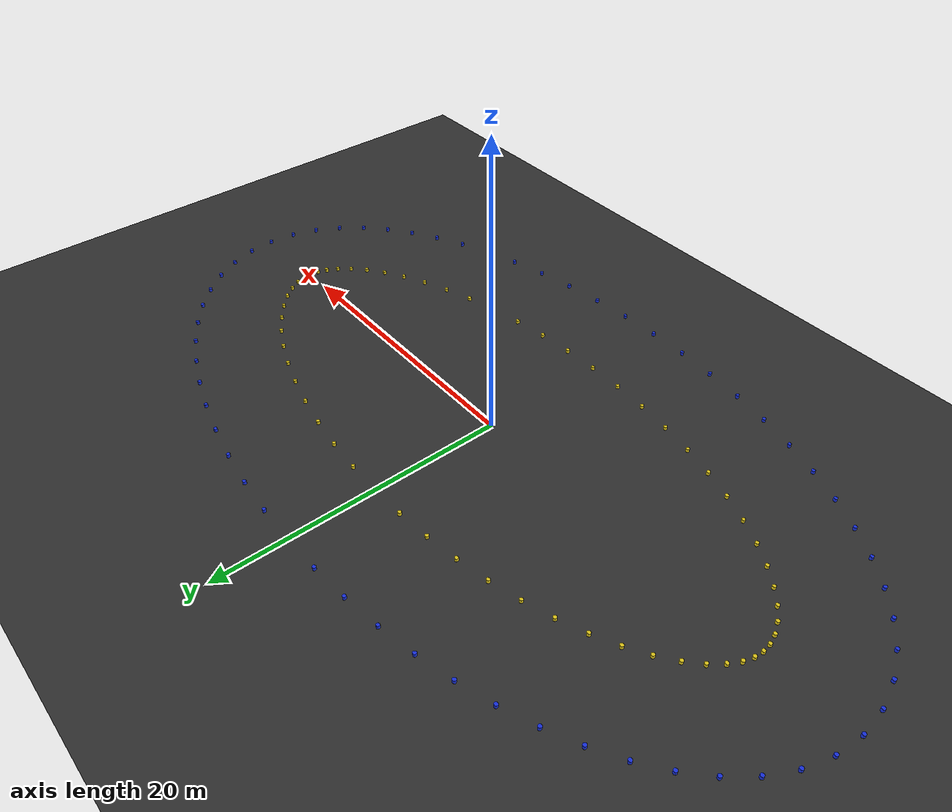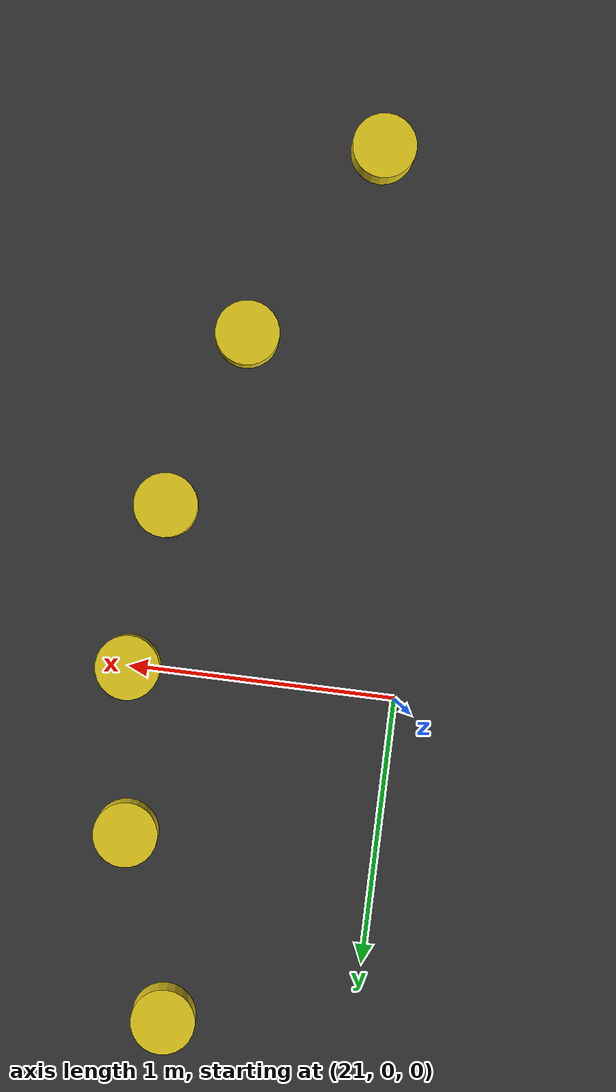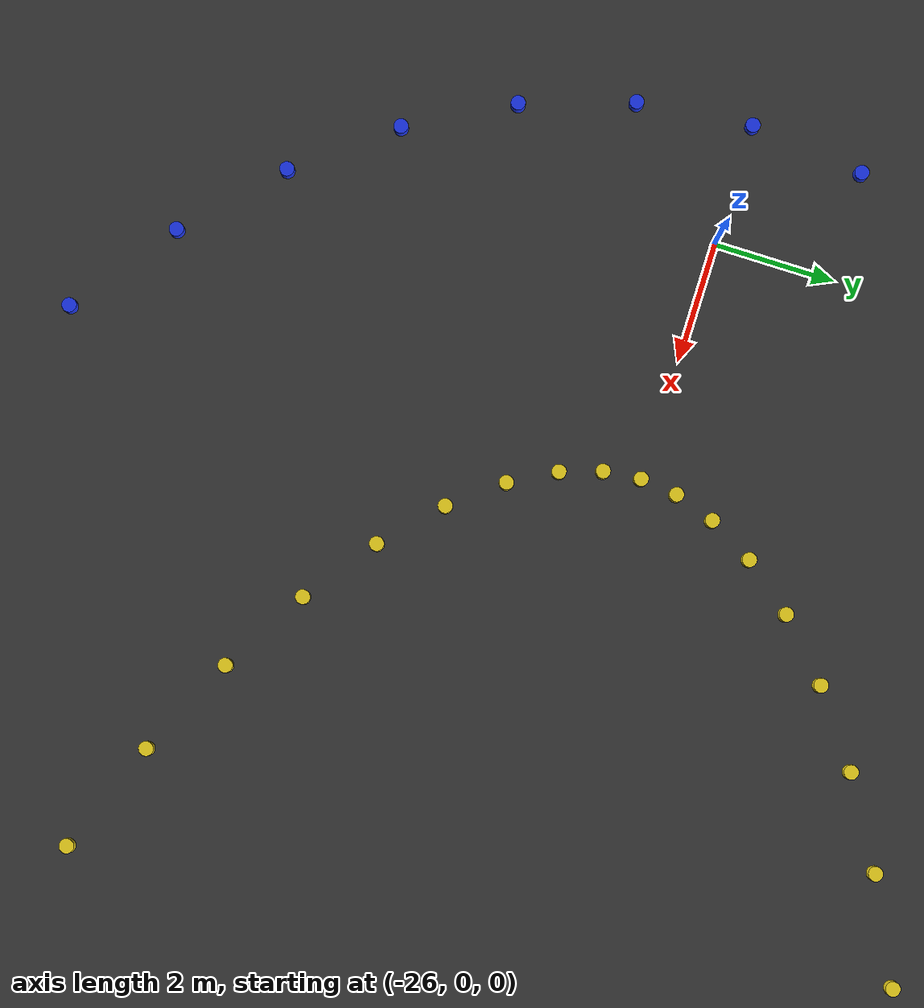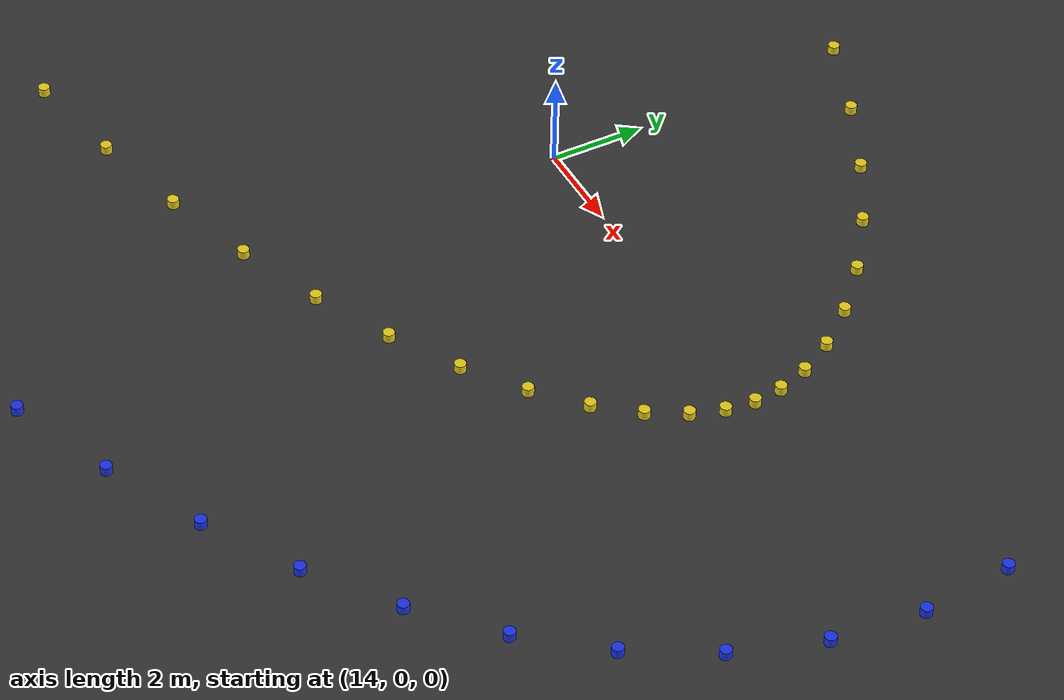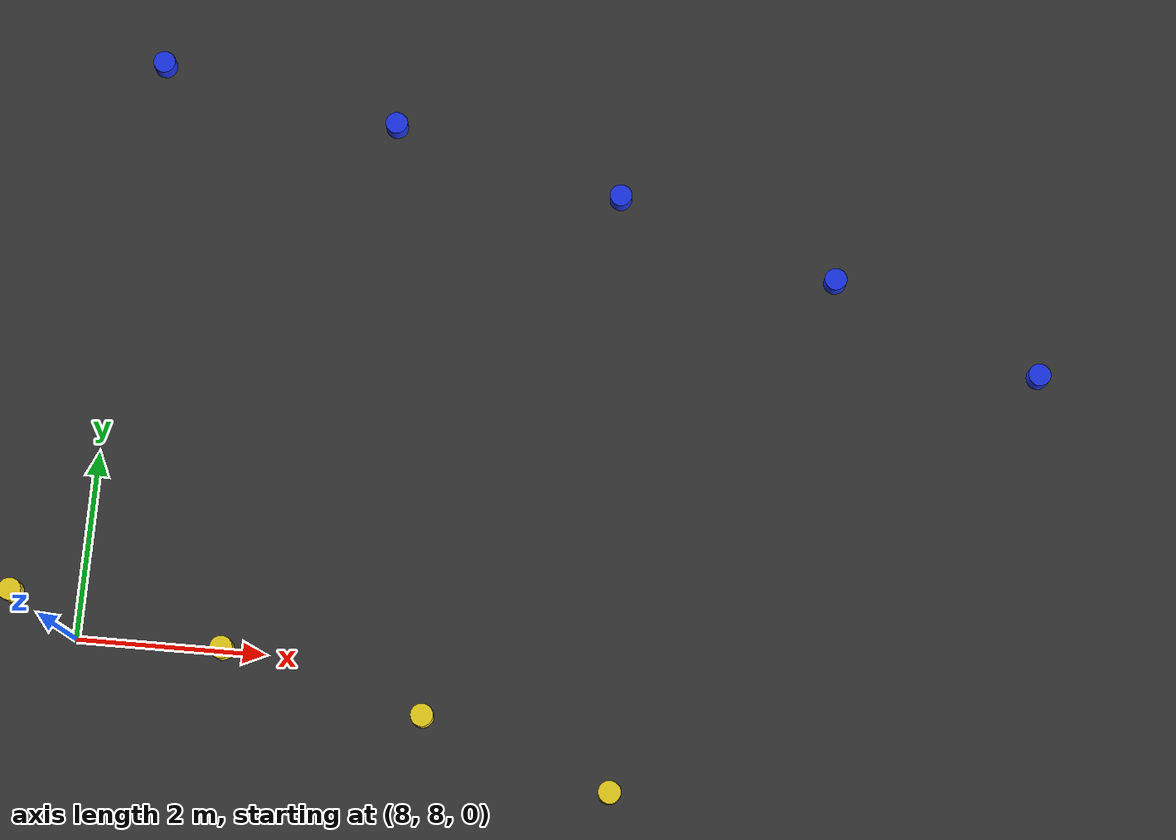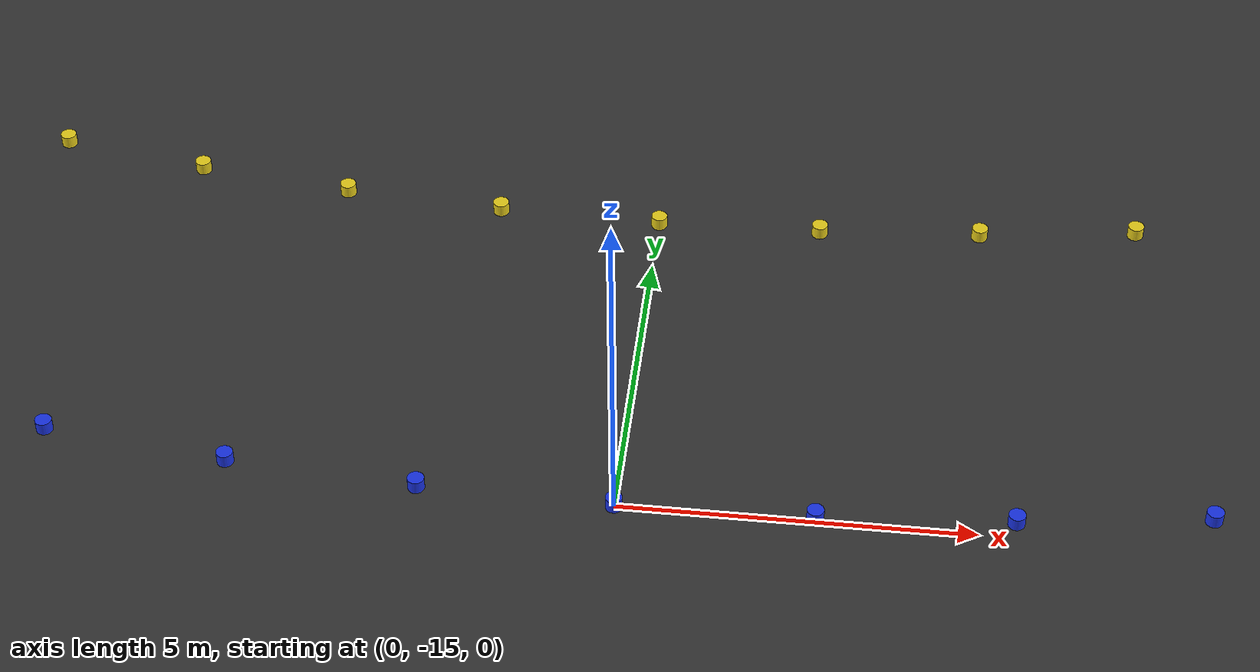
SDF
<sdf version="1.9">
 <world name="fs_world">
  <light name="sun" type="directional"/>
  <model name="ground">
   <static>true</static>
   <link name="link">
    <collision name="col">
     <geometry><plane><normal>0 0 1</normal><size>500 500</size></plane></geometry>
    </collision>
    <visual name="vis">
     <geometry><plane><normal>0 0 1</normal><size>500 500</size></plane></geometry>
     <material><ambient>0.2 0.2 0.2 1</ambient></material>
    </visual>
   </link>
  </model>
  <model name="cone_0">
   <pose>28.0 0.0 0 0 0 0</pose>
   <static>true</static>
   <link name="link">
    <collision name="col">
     <geometry><cylinder><radius>0.12</radius><length>0.35</length></cylinder></geometry>
    </collision>
    <visual name="vis">
     <geometry><cylinder><radius>0.12</radius><length>0.35</length></cylinder></geometry>
     <material><ambient>0.1 0.2 0.9 1</ambient></material>
    </visual>
   </link>
  </model>
  <model name="cone_1">
   <pose>22.0 0.0 0 0 0 0</pose>
   <static>true</static>
   <link name="link">
    <collision name="col">
     <geometry><cylinder><radius>0.12</radius><length>0.35</length></cylinder></geometry>
    </collision>
    <visual name="vis">
     <geometry><cylinder><radius>0.12</radius><length>0.35</length></cylinder></geometry>
     <material><ambient>0.9 0.8 0.1 1</ambient></material>
    </visual>
   </link>
  </model>
  <model name="cone_2">
   <pose>27.793614519841004 1.8960395127234113 0 0 0 0</pose>
   <static>true</static>
   <link name="link">
    <collision name="col">
     <geometry><cylinder><radius>0.12</radius><length>0.35</length></cylinder></geometry>
    </collision>
    <visual name="vis">
     <geometry><cylinder><radius>0.12</radius><length>0.35</length></cylinder></geometry>
     <material><ambient>0.1 0.2 0.9 1</ambient></material>
    </visual>
   </link>
  </model>
  <model name="cone_3">
   <pose>21.932480248572663 0.612643605700272 0 0 0 0</pose>
   <static>true</static>
   <link name="link">
    <collision name="col">
     <geometry><cylinder><radius>0.12</radius><length>0.35</length></cylinder></geometry>
    </collision>
    <visual name="vis">
     <geometry><cylinder><radius>0.12</radius><length>0.35</length></cylinder></geometry>
     <material><ambient>0.9 0.8 0.1 1</ambient></material>
    </visual>
   </link>
  </model>
  <model name="cone_4">
   <pose>27.196769642521225 3.7096477341922056 0 0 0 0</pose>
   <static>true</static>
   <link name="link">
    <collision name="col">
     <geometry><cylinder><radius>0.12</radius><length>0.35</length></cylinder></geometry>
    </collision>
    <visual name="vis">
     <geometry><cylinder><radius>0.12</radius><length>0.35</length></cylinder></geometry>
     <material><ambient>0.1 0.2 0.9 1</ambient></material>
    </visual>
   </link>
  </model>
  <model name="cone_5">
   <pose>21.71061039416906 1.2802328454340182 0 0 0 0</pose>
   <static>true</static>
   <link name="link">
    <collision name="col">
     <geometry><cylinder><radius>0.12</radius><length>0.35</length></cylinder></geometry>
    </collision>
    <visual name="vis">
     <geometry><cylinder><radius>0.12</radius><length>0.35</length></cylinder></geometry>
     <material><ambient>0.9 0.8 0.1 1</ambient></material>
    </visual>
   </link>
  </model>
  <model name="cone_6">
   <pose>26.2607494462514 5.389891169063499 0 0 0 0</pose>
   <static>true</static>
   <link name="link">
    <collision name="col">
     <geometry><cylinder><radius>0.12</radius><length>0.35</length></cylinder></geometry>
    </collision>
    <visual name="vis">
     <geometry><cylinder><radius>0.12</radius><length>0.35</length></cylinder></geometry>
     <material><ambient>0.1 0.2 0.9 1</ambient></material>
    </visual>
   </link>
  </model>
  <model name="cone_7">
   <pose>21.292076368506276 2.0265166959352383 0 0 0 0</pose>
   <static>true</static>
   <link name="link">
    <collision name="col">
     <geometry><cylinder><radius>0.12</radius><length>0.35</length></cylinder></geometry>
    </collision>
    <visual name="vis">
     <geometry><cylinder><radius>0.12</radius><length>0.35</length></cylinder></geometry>
     <material><ambient>0.9 0.8 0.1 1</ambient></material>
    </visual>
   </link>
  </model>
  <model name="cone_8">
   <pose>25.03812611919229 6.9209978372060625 0 0 0 0</pose>
   <static>true</static>
   <link name="link">
    <collision name="col">
     <geometry><cylinder><radius>0.12</radius><length>0.35</length></cylinder></geometry>
    </collision>
    <visual name="vis">
     <geometry><cylinder><radius>0.12</radius><length>0.35</length></cylinder></geometry>
     <material><ambient>0.1 0.2 0.9 1</ambient></material>
    </visual>
   </link>
  </model>
  <model name="cone_9">
   <pose>20.63914676293775 2.8406815966131425 0 0 0 0</pose>
   <static>true</static>
   <link name="link">
    <collision name="col">
     <geometry><cylinder><radius>0.12</radius><length>0.35</length></cylinder></geometry>
    </collision>
    <visual name="vis">
     <geometry><cylinder><radius>0.12</radius><length>0.35</length></cylinder></geometry>
     <material><ambient>0.9 0.8 0.1 1</ambient></material>
    </visual>
   </link>
  </model>
  <model name="cone_10">
   <pose>23.568533660782546 8.306873444703243 0 0 0 0</pose>
   <static>true</static>
   <link name="link">
    <collision name="col">
     <geometry><cylinder><radius>0.12</radius><length>0.35</length></cylinder></geometry>
    </collision>
    <visual name="vis">
     <geometry><cylinder><radius>0.12</radius><length>0.35</length></cylinder></geometry>
     <material><ambient>0.1 0.2 0.9 1</ambient></material>
    </visual>
   </link>
  </model>
  <model name="cone_11">
   <pose>19.732736528439393 3.693126555296755 0 0 0 0</pose>
   <static>true</static>
   <link name="link">
    <collision name="col">
     <geometry><cylinder><radius>0.12</radius><length>0.35</length></cylinder></geometry>
    </collision>
    <visual name="vis">
     <geometry><cylinder><radius>0.12</radius><length>0.35</length></cylinder></geometry>
     <material><ambient>0.9 0.8 0.1 1</ambient></material>
    </visual>
   </link>
  </model>
  <model name="cone_12">
   <pose>21.87910785404863 9.556487659740117 0 0 0 0</pose>
   <static>true</static>
   <link name="link">
    <collision name="col">
     <geometry><cylinder><radius>0.12</radius><length>0.35</length></cylinder></geometry>
    </collision>
    <visual name="vis">
     <geometry><cylinder><radius>0.12</radius><length>0.35</length></cylinder></geometry>
     <material><ambient>0.1 0.2 0.9 1</ambient></material>
    </visual>
   </link>
  </model>
  <model name="cone_13">
   <pose>18.57174186469874 4.550358395279239 0 0 0 0</pose>
   <static>true</static>
   <link name="link">
    <collision name="col">
     <geometry><cylinder><radius>0.12</radius><length>0.35</length></cylinder></geometry>
    </collision>
    <visual name="vis">
     <geometry><cylinder><radius>0.12</radius><length>0.35</length></cylinder></geometry>
     <material><ambient>0.9 0.8 0.1 1</ambient></material>
    </visual>
   </link>
  </model>
  <model name="cone_14">
   <pose>19.989892051724603 10.676889129386758 0 0 0 0</pose>
   <static>true</static>
   <link name="link">
    <collision name="col">
     <geometry><cylinder><radius>0.12</radius><length>0.35</length></cylinder></geometry>
    </collision>
    <visual name="vis">
     <geometry><cylinder><radius>0.12</radius><length>0.35</length></cylinder></geometry>
     <material><ambient>0.1 0.2 0.9 1</ambient></material>
    </visual>
   </link>
  </model>
  <model name="cone_15">
   <pose>17.167349222145113 5.38224542322584 0 0 0 0</pose>
   <static>true</static>
   <link name="link">
    <collision name="col">
     <geometry><cylinder><radius>0.12</radius><length>0.35</length></cylinder></geometry>
    </collision>
    <visual name="vis">
     <geometry><cylinder><radius>0.12</radius><length>0.35</length></cylinder></geometry>
     <material><ambient>0.9 0.8 0.1 1</ambient></material>
    </visual>
   </link>
  </model>
  <model name="cone_16">
   <pose>17.918445292419193 11.671548220537348 0 0 0 0</pose>
   <static>true</static>
   <link name="link">
    <collision name="col">
     <geometry><cylinder><radius>0.12</radius><length>0.35</length></cylinder></geometry>
    </collision>
    <visual name="vis">
     <geometry><cylinder><radius>0.12</radius><length>0.35</length></cylinder></geometry>
     <material><ambient>0.1 0.2 0.9 1</ambient></material>
    </visual>
   </link>
  </model>
  <model name="cone_17">
   <pose>15.53808502552372 6.163927590920116 0 0 0 0</pose>
   <static>true</static>
   <link name="link">
    <collision name="col">
     <geometry><cylinder><radius>0.12</radius><length>0.35</length></cylinder></geometry>
    </collision>
    <visual name="vis">
     <geometry><cylinder><radius>0.12</radius><length>0.35</length></cylinder></geometry>
     <material><ambient>0.9 0.8 0.1 1</ambient></material>
    </visual>
   </link>
  </model>
  <model name="cone_18">
   <pose>15.68250332635542 12.54088973823052 0 0 0 0</pose>
   <static>true</static>
   <link name="link">
    <collision name="col">
     <geometry><cylinder><radius>0.12</radius><length>0.35</length></cylinder></geometry>
    </collision>
    <visual name="vis">
     <geometry><cylinder><radius>0.12</radius><length>0.35</length></cylinder></geometry>
     <material><ambient>0.1 0.2 0.9 1</ambient></material>
    </visual>
   </link>
  </model>
  <model name="cone_19">
   <pose>13.706759288268238 6.875518126768219 0 0 0 0</pose>
   <static>true</static>
   <link name="link">
    <collision name="col">
     <geometry><cylinder><radius>0.12</radius><length>0.35</length></cylinder></geometry>
    </collision>
    <visual name="vis">
     <geometry><cylinder><radius>0.12</radius><length>0.35</length></cylinder></geometry>
     <material><ambient>0.9 0.8 0.1 1</ambient></material>
    </visual>
   </link>
  </model>
  <model name="cone_20">
   <pose>13.301187825450024 13.283342387257138 0 0 0 0</pose>
   <static>true</static>
   <link name="link">
    <collision name="col">
     <geometry><cylinder><radius>0.12</radius><length>0.35</length></cylinder></geometry>
    </collision>
    <visual name="vis">
     <geometry><cylinder><radius>0.12</radius><length>0.35</length></cylinder></geometry>
     <material><ambient>0.1 0.2 0.9 1</ambient></material>
    </visual>
   </link>
  </model>
  <model name="cone_21">
   <pose>11.698812174549984 7.50126730356939 0 0 0 0</pose>
   <static>true</static>
   <link name="link">
    <collision name="col">
     <geometry><cylinder><radius>0.12</radius><length>0.35</length></cylinder></geometry>
    </collision>
    <visual name="vis">
     <geometry><cylinder><radius>0.12</radius><length>0.35</length></cylinder></geometry>
     <material><ambient>0.9 0.8 0.1 1</ambient></material>
    </visual>
   </link>
  </model>
  <model name="cone_22">
   <pose>10.795387747547151 13.896298467713052 0 0 0 0</pose>
   <static>true</static>
   <link name="link">
    <collision name="col">
     <geometry><cylinder><radius>0.12</radius><length>0.35</length></cylinder></geometry>
    </collision>
    <visual name="vis">
     <geometry><cylinder><radius>0.12</radius><length>0.35</length></cylinder></geometry>
     <material><ambient>0.1 0.2 0.9 1</ambient></material>
    </visual>
   </link>
  </model>
  <model name="cone_23">
   <pose>9.541444406242858 8.02879251570937 0 0 0 0</pose>
   <static>true</static>
   <link name="link">
    <collision name="col">
     <geometry><cylinder><radius>0.12</radius><length>0.35</length></cylinder></geometry>
    </collision>
    <visual name="vis">
     <geometry><cylinder><radius>0.12</radius><length>0.35</length></cylinder></geometry>
     <material><ambient>0.9 0.8 0.1 1</ambient></material>
    </visual>
   </link>
  </model>
  <model name="cone_24">
   <pose>8.187720567666641 14.376844634541838 0 0 0 0</pose>
   <static>true</static>
   <link name="link">
    <collision name="col">
     <geometry><cylinder><radius>0.12</radius><length>0.35</length></cylinder></geometry>
    </collision>
    <visual name="vis">
     <geometry><cylinder><radius>0.12</radius><length>0.35</length></cylinder></geometry>
     <material><ambient>0.1 0.2 0.9 1</ambient></material>
    </visual>
   </link>
  </model>
  <model name="cone_25">
   <pose>7.263129151080732 8.448511756541846 0 0 0 0</pose>
   <static>true</static>
   <link name="link">
    <collision name="col">
     <geometry><cylinder><radius>0.12</radius><length>0.35</length></cylinder></geometry>
    </collision>
    <visual name="vis">
     <geometry><cylinder><radius>0.12</radius><length>0.35</length></cylinder></geometry>
     <material><ambient>0.9 0.8 0.1 1</ambient></material>
    </visual>
   </link>
  </model>
  <model name="cone_26">
   <pose>5.502292966352266 14.722277755320746 0 0 0 0</pose>
   <static>true</static>
   <link name="link">
    <collision name="col">
     <geometry><cylinder><radius>0.12</radius><length>0.35</length></cylinder></geometry>
    </collision>
    <visual name="vis">
     <geometry><cylinder><radius>0.12</radius><length>0.35</length></cylinder></geometry>
     <material><ambient>0.1 0.2 0.9 1</ambient></material>
    </visual>
   </link>
  </model>
  <model name="cone_27">
   <pose>4.893291574535706 8.753264662290587 0 0 0 0</pose>
   <static>true</static>
   <link name="link">
    <collision name="col">
     <geometry><cylinder><radius>0.12</radius><length>0.35</length></cylinder></geometry>
    </collision>
    <visual name="vis">
     <geometry><cylinder><radius>0.12</radius><length>0.35</length></cylinder></geometry>
     <material><ambient>0.9 0.8 0.1 1</ambient></material>
    </visual>
   </link>
  </model>
  <model name="cone_28">
   <pose>2.764369438790843 14.930452208094279 0 0 0 0</pose>
   <static>true</static>
   <link name="link">
    <collision name="col">
     <geometry><cylinder><radius>0.12</radius><length>0.35</length></cylinder></geometry>
    </collision>
    <visual name="vis">
     <geometry><cylinder><radius>0.12</radius><length>0.35</length></cylinder></geometry>
     <material><ambient>0.1 0.2 0.9 1</ambient></material>
    </visual>
   </link>
  </model>
  <model name="cone_29">
   <pose>2.46205372459183 8.938073280744279 0 0 0 0</pose>
   <static>true</static>
   <link name="link">
    <collision name="col">
     <geometry><cylinder><radius>0.12</radius><length>0.35</length></cylinder></geometry>
    </collision>
    <visual name="vis">
     <geometry><cylinder><radius>0.12</radius><length>0.35</length></cylinder></geometry>
     <material><ambient>0.9 0.8 0.1 1</ambient></material>
    </visual>
   </link>
  </model>
  <model name="cone_30">
   <pose>1.618983068472801e-15 15.0 0 0 0 0</pose>
   <static>true</static>
   <link name="link">
    <collision name="col">
     <geometry><cylinder><radius>0.12</radius><length>0.35</length></cylinder></geometry>
    </collision>
    <visual name="vis">
     <geometry><cylinder><radius>0.12</radius><length>0.35</length></cylinder></geometry>
     <material><ambient>0.1 0.2 0.9 1</ambient></material>
    </visual>
   </link>
  </model>
  <model name="cone_31">
   <pose>1.442633929395582e-15 9.0 0 0 0 0</pose>
   <static>true</static>
   <link name="link">
    <collision name="col">
     <geometry><cylinder><radius>0.12</radius><length>0.35</length></cylinder></geometry>
    </collision>
    <visual name="vis">
     <geometry><cylinder><radius>0.12</radius><length>0.35</length></cylinder></geometry>
     <material><ambient>0.9 0.8 0.1 1</ambient></material>
    </visual>
   </link>
  </model>
  <model name="cone_32">
   <pose>-2.7643694387908453 14.930452208094279 0 0 0 0</pose>
   <static>true</static>
   <link name="link">
    <collision name="col">
     <geometry><cylinder><radius>0.12</radius><length>0.35</length></cylinder></geometry>
    </collision>
    <visual name="vis">
     <geometry><cylinder><radius>0.12</radius><length>0.35</length></cylinder></geometry>
     <material><ambient>0.1 0.2 0.9 1</ambient></material>
    </visual>
   </link>
  </model>
  <model name="cone_33">
   <pose>-2.4620537245918324 8.938073280744279 0 0 0 0</pose>
   <static>true</static>
   <link name="link">
    <collision name="col">
     <geometry><cylinder><radius>0.12</radius><length>0.35</length></cylinder></geometry>
    </collision>
    <visual name="vis">
     <geometry><cylinder><radius>0.12</radius><length>0.35</length></cylinder></geometry>
     <material><ambient>0.9 0.8 0.1 1</ambient></material>
    </visual>
   </link>
  </model>
  <model name="cone_34">
   <pose>-5.502292966352264 14.72227775532075 0 0 0 0</pose>
   <static>true</static>
   <link name="link">
    <collision name="col">
     <geometry><cylinder><radius>0.12</radius><length>0.35</length></cylinder></geometry>
    </collision>
    <visual name="vis">
     <geometry><cylinder><radius>0.12</radius><length>0.35</length></cylinder></geometry>
     <material><ambient>0.1 0.2 0.9 1</ambient></material>
    </visual>
   </link>
  </model>
  <model name="cone_35">
   <pose>-4.893291574535703 8.753264662290587 0 0 0 0</pose>
   <static>true</static>
   <link name="link">
    <collision name="col">
     <geometry><cylinder><radius>0.12</radius><length>0.35</length></cylinder></geometry>
    </collision>
    <visual name="vis">
     <geometry><cylinder><radius>0.12</radius><length>0.35</length></cylinder></geometry>
     <material><ambient>0.9 0.8 0.1 1</ambient></material>
    </visual>
   </link>
  </model>
  <model name="cone_36">
   <pose>-8.187720567666638 14.37684463454184 0 0 0 0</pose>
   <static>true</static>
   <link name="link">
    <collision name="col">
     <geometry><cylinder><radius>0.12</radius><length>0.35</length></cylinder></geometry>
    </collision>
    <visual name="vis">
     <geometry><cylinder><radius>0.12</radius><length>0.35</length></cylinder></geometry>
     <material><ambient>0.1 0.2 0.9 1</ambient></material>
    </visual>
   </link>
  </model>
  <model name="cone_37">
   <pose>-7.263129151080729 8.448511756541848 0 0 0 0</pose>
   <static>true</static>
   <link name="link">
    <collision name="col">
     <geometry><cylinder><radius>0.12</radius><length>0.35</length></cylinder></geometry>
    </collision>
    <visual name="vis">
     <geometry><cylinder><radius>0.12</radius><length>0.35</length></cylinder></geometry>
     <material><ambient>0.9 0.8 0.1 1</ambient></material>
    </visual>
   </link>
  </model>
  <model name="cone_38">
   <pose>-10.795387747547153 13.896298467713052 0 0 0 0</pose>
   <static>true</static>
   <link name="link">
    <collision name="col">
     <geometry><cylinder><radius>0.12</radius><length>0.35</length></cylinder></geometry>
    </collision>
    <visual name="vis">
     <geometry><cylinder><radius>0.12</radius><length>0.35</length></cylinder></geometry>
     <material><ambient>0.1 0.2 0.9 1</ambient></material>
    </visual>
   </link>
  </model>
  <model name="cone_39">
   <pose>-9.54144440624286 8.02879251570937 0 0 0 0</pose>
   <static>true</static>
   <link name="link">
    <collision name="col">
     <geometry><cylinder><radius>0.12</radius><length>0.35</length></cylinder></geometry>
    </collision>
    <visual name="vis">
     <geometry><cylinder><radius>0.12</radius><length>0.35</length></cylinder></geometry>
     <material><ambient>0.9 0.8 0.1 1</ambient></material>
    </visual>
   </link>
  </model>
  <model name="cone_40">
   <pose>-13.301187825450015 13.283342387257138 0 0 0 0</pose>
   <static>true</static>
   <link name="link">
    <collision name="col">
     <geometry><cylinder><radius>0.12</radius><length>0.35</length></cylinder></geometry>
    </collision>
    <visual name="vis">
     <geometry><cylinder><radius>0.12</radius><length>0.35</length></cylinder></geometry>
     <material><ambient>0.1 0.2 0.9 1</ambient></material>
    </visual>
   </link>
  </model>
  <model name="cone_41">
   <pose>-11.698812174549975 7.50126730356939 0 0 0 0</pose>
   <static>true</static>
   <link name="link">
    <collision name="col">
     <geometry><cylinder><radius>0.12</radius><length>0.35</length></cylinder></geometry>
    </collision>
    <visual name="vis">
     <geometry><cylinder><radius>0.12</radius><length>0.35</length></cylinder></geometry>
     <material><ambient>0.9 0.8 0.1 1</ambient></material>
    </visual>
   </link>
  </model>
  <model name="cone_42">
   <pose>-15.682503326355416 12.54088973823052 0 0 0 0</pose>
   <static>true</static>
   <link name="link">
    <collision name="col">
     <geometry><cylinder><radius>0.12</radius><length>0.35</length></cylinder></geometry>
    </collision>
    <visual name="vis">
     <geometry><cylinder><radius>0.12</radius><length>0.35</length></cylinder></geometry>
     <material><ambient>0.1 0.2 0.9 1</ambient></material>
    </visual>
   </link>
  </model>
  <model name="cone_43">
   <pose>-13.706759288268234 6.875518126768219 0 0 0 0</pose>
   <static>true</static>
   <link name="link">
    <collision name="col">
     <geometry><cylinder><radius>0.12</radius><length>0.35</length></cylinder></geometry>
    </collision>
    <visual name="vis">
     <geometry><cylinder><radius>0.12</radius><length>0.35</length></cylinder></geometry>
     <material><ambient>0.9 0.8 0.1 1</ambient></material>
    </visual>
   </link>
  </model>
  <model name="cone_44">
   <pose>-17.918445292419193 11.671548220537348 0 0 0 0</pose>
   <static>true</static>
   <link name="link">
    <collision name="col">
     <geometry><cylinder><radius>0.12</radius><length>0.35</length></cylinder></geometry>
    </collision>
    <visual name="vis">
     <geometry><cylinder><radius>0.12</radius><length>0.35</length></cylinder></geometry>
     <material><ambient>0.1 0.2 0.9 1</ambient></material>
    </visual>
   </link>
  </model>
  <model name="cone_45">
   <pose>-15.53808502552372 6.163927590920116 0 0 0 0</pose>
   <static>true</static>
   <link name="link">
    <collision name="col">
     <geometry><cylinder><radius>0.12</radius><length>0.35</length></cylinder></geometry>
    </collision>
    <visual name="vis">
     <geometry><cylinder><radius>0.12</radius><length>0.35</length></cylinder></geometry>
     <material><ambient>0.9 0.8 0.1 1</ambient></material>
    </visual>
   </link>
  </model>
  <model name="cone_46">
   <pose>-19.989892051724595 10.67688912938676 0 0 0 0</pose>
   <static>true</static>
   <link name="link">
    <collision name="col">
     <geometry><cylinder><radius>0.12</radius><length>0.35</length></cylinder></geometry>
    </collision>
    <visual name="vis">
     <geometry><cylinder><radius>0.12</radius><length>0.35</length></cylinder></geometry>
     <material><ambient>0.1 0.2 0.9 1</ambient></material>
    </visual>
   </link>
  </model>
  <model name="cone_47">
   <pose>-17.167349222145106 5.382245423225841 0 0 0 0</pose>
   <static>true</static>
   <link name="link">
    <collision name="col">
     <geometry><cylinder><radius>0.12</radius><length>0.35</length></cylinder></geometry>
    </collision>
    <visual name="vis">
     <geometry><cylinder><radius>0.12</radius><length>0.35</length></cylinder></geometry>
     <material><ambient>0.9 0.8 0.1 1</ambient></material>
    </visual>
   </link>
  </model>
  <model name="cone_48">
   <pose>-21.879107854048627 9.556487659740117 0 0 0 0</pose>
   <static>true</static>
   <link name="link">
    <collision name="col">
     <geometry><cylinder><radius>0.12</radius><length>0.35</length></cylinder></geometry>
    </collision>
    <visual name="vis">
     <geometry><cylinder><radius>0.12</radius><length>0.35</length></cylinder></geometry>
     <material><ambient>0.1 0.2 0.9 1</ambient></material>
    </visual>
   </link>
  </model>
  <model name="cone_49">
   <pose>-18.571741864698737 4.55035839527924 0 0 0 0</pose>
   <static>true</static>
   <link name="link">
    <collision name="col">
     <geometry><cylinder><radius>0.12</radius><length>0.35</length></cylinder></geometry>
    </collision>
    <visual name="vis">
     <geometry><cylinder><radius>0.12</radius><length>0.35</length></cylinder></geometry>
     <material><ambient>0.9 0.8 0.1 1</ambient></material>
    </visual>
   </link>
  </model>
  <model name="cone_50">
   <pose>-23.568533660782546 8.306873444703243 0 0 0 0</pose>
   <static>true</static>
   <link name="link">
    <collision name="col">
     <geometry><cylinder><radius>0.12</radius><length>0.35</length></cylinder></geometry>
    </collision>
    <visual name="vis">
     <geometry><cylinder><radius>0.12</radius><length>0.35</length></cylinder></geometry>
     <material><ambient>0.1 0.2 0.9 1</ambient></material>
    </visual>
   </link>
  </model>
  <model name="cone_51">
   <pose>-19.732736528439393 3.693126555296755 0 0 0 0</pose>
   <static>true</static>
   <link name="link">
    <collision name="col">
     <geometry><cylinder><radius>0.12</radius><length>0.35</length></cylinder></geometry>
    </collision>
    <visual name="vis">
     <geometry><cylinder><radius>0.12</radius><length>0.35</length></cylinder></geometry>
     <material><ambient>0.9 0.8 0.1 1</ambient></material>
    </visual>
   </link>
  </model>
  <model name="cone_52">
   <pose>-25.03812611919229 6.920997837206066 0 0 0 0</pose>
   <static>true</static>
   <link name="link">
    <collision name="col">
     <geometry><cylinder><radius>0.12</radius><length>0.35</length></cylinder></geometry>
    </collision>
    <visual name="vis">
     <geometry><cylinder><radius>0.12</radius><length>0.35</length></cylinder></geometry>
     <material><ambient>0.1 0.2 0.9 1</ambient></material>
    </visual>
   </link>
  </model>
  <model name="cone_53">
   <pose>-20.63914676293775 2.8406815966131442 0 0 0 0</pose>
   <static>true</static>
   <link name="link">
    <collision name="col">
     <geometry><cylinder><radius>0.12</radius><length>0.35</length></cylinder></geometry>
    </collision>
    <visual name="vis">
     <geometry><cylinder><radius>0.12</radius><length>0.35</length></cylinder></geometry>
     <material><ambient>0.9 0.8 0.1 1</ambient></material>
    </visual>
   </link>
  </model>
  <model name="cone_54">
   <pose>-26.2607494462514 5.389891169063501 0 0 0 0</pose>
   <static>true</static>
   <link name="link">
    <collision name="col">
     <geometry><cylinder><radius>0.12</radius><length>0.35</length></cylinder></geometry>
    </collision>
    <visual name="vis">
     <geometry><cylinder><radius>0.12</radius><length>0.35</length></cylinder></geometry>
     <material><ambient>0.1 0.2 0.9 1</ambient></material>
    </visual>
   </link>
  </model>
  <model name="cone_55">
   <pose>-21.292076368506276 2.0265166959352396 0 0 0 0</pose>
   <static>true</static>
   <link name="link">
    <collision name="col">
     <geometry><cylinder><radius>0.12</radius><length>0.35</length></cylinder></geometry>
    </collision>
    <visual name="vis">
     <geometry><cylinder><radius>0.12</radius><length>0.35</length></cylinder></geometry>
     <material><ambient>0.9 0.8 0.1 1</ambient></material>
    </visual>
   </link>
  </model>
  <model name="cone_56">
   <pose>-27.196769642521225 3.7096477341922056 0 0 0 0</pose>
   <static>true</static>
   <link name="link">
    <collision name="col">
     <geometry><cylinder><radius>0.12</radius><length>0.35</length></cylinder></geometry>
    </collision>
    <visual name="vis">
     <geometry><cylinder><radius>0.12</radius><length>0.35</length></cylinder></geometry>
     <material><ambient>0.1 0.2 0.9 1</ambient></material>
    </visual>
   </link>
  </model>
  <model name="cone_57">
   <pose>-21.71061039416906 1.2802328454340182 0 0 0 0</pose>
   <static>true</static>
   <link name="link">
    <collision name="col">
     <geometry><cylinder><radius>0.12</radius><length>0.35</length></cylinder></geometry>
    </collision>
    <visual name="vis">
     <geometry><cylinder><radius>0.12</radius><length>0.35</length></cylinder></geometry>
     <material><ambient>0.9 0.8 0.1 1</ambient></material>
    </visual>
   </link>
  </model>
  <model name="cone_58">
   <pose>-27.793614519841004 1.8960395127234158 0 0 0 0</pose>
   <static>true</static>
   <link name="link">
    <collision name="col">
     <geometry><cylinder><radius>0.12</radius><length>0.35</length></cylinder></geometry>
    </collision>
    <visual name="vis">
     <geometry><cylinder><radius>0.12</radius><length>0.35</length></cylinder></geometry>
     <material><ambient>0.1 0.2 0.9 1</ambient></material>
    </visual>
   </link>
  </model>
  <model name="cone_59">
   <pose>-21.932480248572663 0.6126436057002737 0 0 0 0</pose>
   <static>true</static>
   <link name="link">
    <collision name="col">
     <geometry><cylinder><radius>0.12</radius><length>0.35</length></cylinder></geometry>
    </collision>
    <visual name="vis">
     <geometry><cylinder><radius>0.12</radius><length>0.35</length></cylinder></geometry>
     <material><ambient>0.9 0.8 0.1 1</ambient></material>
    </visual>
   </link>
  </model>
  <model name="cone_60">
   <pose>-28.0 2.2349804084439196e-15 0 0 0 0</pose>
   <static>true</static>
   <link name="link">
    <collision name="col">
     <geometry><cylinder><radius>0.12</radius><length>0.35</length></cylinder></geometry>
    </collision>
    <visual name="vis">
     <geometry><cylinder><radius>0.12</radius><length>0.35</length></cylinder></geometry>
     <material><ambient>0.1 0.2 0.9 1</ambient></material>
    </visual>
   </link>
  </model>
  <model name="cone_61">
   <pose>-22.0 7.041719095097281e-16 0 0 0 0</pose>
   <static>true</static>
   <link name="link">
    <collision name="col">
     <geometry><cylinder><radius>0.12</radius><length>0.35</length></cylinder></geometry>
    </collision>
    <visual name="vis">
     <geometry><cylinder><radius>0.12</radius><length>0.35</length></cylinder></geometry>
     <material><ambient>0.9 0.8 0.1 1</ambient></material>
    </visual>
   </link>
  </model>
  <model name="cone_62">
   <pose>-27.793614519841004 -1.8960395127234115 0 0 0 0</pose>
   <static>true</static>
   <link name="link">
    <collision name="col">
     <geometry><cylinder><radius>0.12</radius><length>0.35</length></cylinder></geometry>
    </collision>
    <visual name="vis">
     <geometry><cylinder><radius>0.12</radius><length>0.35</length></cylinder></geometry>
     <material><ambient>0.1 0.2 0.9 1</ambient></material>
    </visual>
   </link>
  </model>
  <model name="cone_63">
   <pose>-21.932480248572663 -0.6126436057002722 0 0 0 0</pose>
   <static>true</static>
   <link name="link">
    <collision name="col">
     <geometry><cylinder><radius>0.12</radius><length>0.35</length></cylinder></geometry>
    </collision>
    <visual name="vis">
     <geometry><cylinder><radius>0.12</radius><length>0.35</length></cylinder></geometry>
     <material><ambient>0.9 0.8 0.1 1</ambient></material>
    </visual>
   </link>
  </model>
  <model name="cone_64">
   <pose>-27.19676964252122 -3.7096477341922087 0 0 0 0</pose>
   <static>true</static>
   <link name="link">
    <collision name="col">
     <geometry><cylinder><radius>0.12</radius><length>0.35</length></cylinder></geometry>
    </collision>
    <visual name="vis">
     <geometry><cylinder><radius>0.12</radius><length>0.35</length></cylinder></geometry>
     <material><ambient>0.1 0.2 0.9 1</ambient></material>
    </visual>
   </link>
  </model>
  <model name="cone_65">
   <pose>-21.710610394169056 -1.2802328454340195 0 0 0 0</pose>
   <static>true</static>
   <link name="link">
    <collision name="col">
     <geometry><cylinder><radius>0.12</radius><length>0.35</length></cylinder></geometry>
    </collision>
    <visual name="vis">
     <geometry><cylinder><radius>0.12</radius><length>0.35</length></cylinder></geometry>
     <material><ambient>0.9 0.8 0.1 1</ambient></material>
    </visual>
   </link>
  </model>
  <model name="cone_66">
   <pose>-26.260749446251403 -5.389891169063498 0 0 0 0</pose>
   <static>true</static>
   <link name="link">
    <collision name="col">
     <geometry><cylinder><radius>0.12</radius><length>0.35</length></cylinder></geometry>
    </collision>
    <visual name="vis">
     <geometry><cylinder><radius>0.12</radius><length>0.35</length></cylinder></geometry>
     <material><ambient>0.1 0.2 0.9 1</ambient></material>
    </visual>
   </link>
  </model>
  <model name="cone_67">
   <pose>-21.29207636850628 -2.026516695935238 0 0 0 0</pose>
   <static>true</static>
   <link name="link">
    <collision name="col">
     <geometry><cylinder><radius>0.12</radius><length>0.35</length></cylinder></geometry>
    </collision>
    <visual name="vis">
     <geometry><cylinder><radius>0.12</radius><length>0.35</length></cylinder></geometry>
     <material><ambient>0.9 0.8 0.1 1</ambient></material>
    </visual>
   </link>
  </model>
  <model name="cone_68">
   <pose>-25.03812611919229 -6.9209978372060625 0 0 0 0</pose>
   <static>true</static>
   <link name="link">
    <collision name="col">
     <geometry><cylinder><radius>0.12</radius><length>0.35</length></cylinder></geometry>
    </collision>
    <visual name="vis">
     <geometry><cylinder><radius>0.12</radius><length>0.35</length></cylinder></geometry>
     <material><ambient>0.1 0.2 0.9 1</ambient></material>
    </visual>
   </link>
  </model>
  <model name="cone_69">
   <pose>-20.63914676293775 -2.8406815966131425 0 0 0 0</pose>
   <static>true</static>
   <link name="link">
    <collision name="col">
     <geometry><cylinder><radius>0.12</radius><length>0.35</length></cylinder></geometry>
    </collision>
    <visual name="vis">
     <geometry><cylinder><radius>0.12</radius><length>0.35</length></cylinder></geometry>
     <material><ambient>0.9 0.8 0.1 1</ambient></material>
    </visual>
   </link>
  </model>
  <model name="cone_70">
   <pose>-23.568533660782542 -8.306873444703246 0 0 0 0</pose>
   <static>true</static>
   <link name="link">
    <collision name="col">
     <geometry><cylinder><radius>0.12</radius><length>0.35</length></cylinder></geometry>
    </collision>
    <visual name="vis">
     <geometry><cylinder><radius>0.12</radius><length>0.35</length></cylinder></geometry>
     <material><ambient>0.1 0.2 0.9 1</ambient></material>
    </visual>
   </link>
  </model>
  <model name="cone_71">
   <pose>-19.73273652843939 -3.6931265552967574 0 0 0 0</pose>
   <static>true</static>
   <link name="link">
    <collision name="col">
     <geometry><cylinder><radius>0.12</radius><length>0.35</length></cylinder></geometry>
    </collision>
    <visual name="vis">
     <geometry><cylinder><radius>0.12</radius><length>0.35</length></cylinder></geometry>
     <material><ambient>0.9 0.8 0.1 1</ambient></material>
    </visual>
   </link>
  </model>
  <model name="cone_72">
   <pose>-21.879107854048634 -9.556487659740116 0 0 0 0</pose>
   <static>true</static>
   <link name="link">
    <collision name="col">
     <geometry><cylinder><radius>0.12</radius><length>0.35</length></cylinder></geometry>
    </collision>
    <visual name="vis">
     <geometry><cylinder><radius>0.12</radius><length>0.35</length></cylinder></geometry>
     <material><ambient>0.1 0.2 0.9 1</ambient></material>
    </visual>
   </link>
  </model>
  <model name="cone_73">
   <pose>-18.571741864698744 -4.550358395279238 0 0 0 0</pose>
   <static>true</static>
   <link name="link">
    <collision name="col">
     <geometry><cylinder><radius>0.12</radius><length>0.35</length></cylinder></geometry>
    </collision>
    <visual name="vis">
     <geometry><cylinder><radius>0.12</radius><length>0.35</length></cylinder></geometry>
     <material><ambient>0.9 0.8 0.1 1</ambient></material>
    </visual>
   </link>
  </model>
  <model name="cone_74">
   <pose>-19.989892051724603 -10.676889129386758 0 0 0 0</pose>
   <static>true</static>
   <link name="link">
    <collision name="col">
     <geometry><cylinder><radius>0.12</radius><length>0.35</length></cylinder></geometry>
    </collision>
    <visual name="vis">
     <geometry><cylinder><radius>0.12</radius><length>0.35</length></cylinder></geometry>
     <material><ambient>0.1 0.2 0.9 1</ambient></material>
    </visual>
   </link>
  </model>
  <model name="cone_75">
   <pose>-17.167349222145113 -5.38224542322584 0 0 0 0</pose>
   <static>true</static>
   <link name="link">
    <collision name="col">
     <geometry><cylinder><radius>0.12</radius><length>0.35</length></cylinder></geometry>
    </collision>
    <visual name="vis">
     <geometry><cylinder><radius>0.12</radius><length>0.35</length></cylinder></geometry>
     <material><ambient>0.9 0.8 0.1 1</ambient></material>
    </visual>
   </link>
  </model>
  <model name="cone_76">
   <pose>-17.91844529241919 -11.671548220537348 0 0 0 0</pose>
   <static>true</static>
   <link name="link">
    <collision name="col">
     <geometry><cylinder><radius>0.12</radius><length>0.35</length></cylinder></geometry>
    </collision>
    <visual name="vis">
     <geometry><cylinder><radius>0.12</radius><length>0.35</length></cylinder></geometry>
     <material><ambient>0.1 0.2 0.9 1</ambient></material>
    </visual>
   </link>
  </model>
  <model name="cone_77">
   <pose>-15.538085025523717 -6.163927590920116 0 0 0 0</pose>
   <static>true</static>
   <link name="link">
    <collision name="col">
     <geometry><cylinder><radius>0.12</radius><length>0.35</length></cylinder></geometry>
    </collision>
    <visual name="vis">
     <geometry><cylinder><radius>0.12</radius><length>0.35</length></cylinder></geometry>
     <material><ambient>0.9 0.8 0.1 1</ambient></material>
    </visual>
   </link>
  </model>
  <model name="cone_78">
   <pose>-15.682503326355421 -12.540889738230518 0 0 0 0</pose>
   <static>true</static>
   <link name="link">
    <collision name="col">
     <geometry><cylinder><radius>0.12</radius><length>0.35</length></cylinder></geometry>
    </collision>
    <visual name="vis">
     <geometry><cylinder><radius>0.12</radius><length>0.35</length></cylinder></geometry>
     <material><ambient>0.1 0.2 0.9 1</ambient></material>
    </visual>
   </link>
  </model>
  <model name="cone_79">
   <pose>-13.70675928826824 -6.875518126768217 0 0 0 0</pose>
   <static>true</static>
   <link name="link">
    <collision name="col">
     <geometry><cylinder><radius>0.12</radius><length>0.35</length></cylinder></geometry>
    </collision>
    <visual name="vis">
     <geometry><cylinder><radius>0.12</radius><length>0.35</length></cylinder></geometry>
     <material><ambient>0.9 0.8 0.1 1</ambient></material>
    </visual>
   </link>
  </model>
  <model name="cone_80">
   <pose>-13.30118782545003 -13.283342387257134 0 0 0 0</pose>
   <static>true</static>
   <link name="link">
    <collision name="col">
     <geometry><cylinder><radius>0.12</radius><length>0.35</length></cylinder></geometry>
    </collision>
    <visual name="vis">
     <geometry><cylinder><radius>0.12</radius><length>0.35</length></cylinder></geometry>
     <material><ambient>0.1 0.2 0.9 1</ambient></material>
    </visual>
   </link>
  </model>
  <model name="cone_81">
   <pose>-11.69881217454999 -7.501267303569387 0 0 0 0</pose>
   <static>true</static>
   <link name="link">
    <collision name="col">
     <geometry><cylinder><radius>0.12</radius><length>0.35</length></cylinder></geometry>
    </collision>
    <visual name="vis">
     <geometry><cylinder><radius>0.12</radius><length>0.35</length></cylinder></geometry>
     <material><ambient>0.9 0.8 0.1 1</ambient></material>
    </visual>
   </link>
  </model>
  <model name="cone_82">
   <pose>-10.79538774754715 -13.896298467713052 0 0 0 0</pose>
   <static>true</static>
   <link name="link">
    <collision name="col">
     <geometry><cylinder><radius>0.12</radius><length>0.35</length></cylinder></geometry>
    </collision>
    <visual name="vis">
     <geometry><cylinder><radius>0.12</radius><length>0.35</length></cylinder></geometry>
     <material><ambient>0.1 0.2 0.9 1</ambient></material>
    </visual>
   </link>
  </model>
  <model name="cone_83">
   <pose>-9.541444406242857 -8.02879251570937 0 0 0 0</pose>
   <static>true</static>
   <link name="link">
    <collision name="col">
     <geometry><cylinder><radius>0.12</radius><length>0.35</length></cylinder></geometry>
    </collision>
    <visual name="vis">
     <geometry><cylinder><radius>0.12</radius><length>0.35</length></cylinder></geometry>
     <material><ambient>0.9 0.8 0.1 1</ambient></material>
    </visual>
   </link>
  </model>
  <model name="cone_84">
   <pose>-8.187720567666643 -14.376844634541838 0 0 0 0</pose>
   <static>true</static>
   <link name="link">
    <collision name="col">
     <geometry><cylinder><radius>0.12</radius><length>0.35</length></cylinder></geometry>
    </collision>
    <visual name="vis">
     <geometry><cylinder><radius>0.12</radius><length>0.35</length></cylinder></geometry>
     <material><ambient>0.1 0.2 0.9 1</ambient></material>
    </visual>
   </link>
  </model>
  <model name="cone_85">
   <pose>-7.263129151080735 -8.448511756541846 0 0 0 0</pose>
   <static>true</static>
   <link name="link">
    <collision name="col">
     <geometry><cylinder><radius>0.12</radius><length>0.35</length></cylinder></geometry>
    </collision>
    <visual name="vis">
     <geometry><cylinder><radius>0.12</radius><length>0.35</length></cylinder></geometry>
     <material><ambient>0.9 0.8 0.1 1</ambient></material>
    </visual>
   </link>
  </model>
  <model name="cone_86">
   <pose>-5.502292966352276 -14.722277755320746 0 0 0 0</pose>
   <static>true</static>
   <link name="link">
    <collision name="col">
     <geometry><cylinder><radius>0.12</radius><length>0.35</length></cylinder></geometry>
    </collision>
    <visual name="vis">
     <geometry><cylinder><radius>0.12</radius><length>0.35</length></cylinder></geometry>
     <material><ambient>0.1 0.2 0.9 1</ambient></material>
    </visual>
   </link>
  </model>
  <model name="cone_87">
   <pose>-4.893291574535714 -8.753264662290587 0 0 0 0</pose>
   <static>true</static>
   <link name="link">
    <collision name="col">
     <geometry><cylinder><radius>0.12</radius><length>0.35</length></cylinder></geometry>
    </collision>
    <visual name="vis">
     <geometry><cylinder><radius>0.12</radius><length>0.35</length></cylinder></geometry>
     <material><ambient>0.9 0.8 0.1 1</ambient></material>
    </visual>
   </link>
  </model>
  <model name="cone_88">
   <pose>-2.76436943879084 -14.93045220809428 0 0 0 0</pose>
   <static>true</static>
   <link name="link">
    <collision name="col">
     <geometry><cylinder><radius>0.12</radius><length>0.35</length></cylinder></geometry>
    </collision>
    <visual name="vis">
     <geometry><cylinder><radius>0.12</radius><length>0.35</length></cylinder></geometry>
     <material><ambient>0.1 0.2 0.9 1</ambient></material>
    </visual>
   </link>
  </model>
  <model name="cone_89">
   <pose>-2.462053724591828 -8.93807328074428 0 0 0 0</pose>
   <static>true</static>
   <link name="link">
    <collision name="col">
     <geometry><cylinder><radius>0.12</radius><length>0.35</length></cylinder></geometry>
    </collision>
    <visual name="vis">
     <geometry><cylinder><radius>0.12</radius><length>0.35</length></cylinder></geometry>
     <material><ambient>0.9 0.8 0.1 1</ambient></material>
    </visual>
   </link>
  </model>
  <model name="cone_90">
   <pose>-4.856949205418403e-15 -15.0 0 0 0 0</pose>
   <static>true</static>
   <link name="link">
    <collision name="col">
     <geometry><cylinder><radius>0.12</radius><length>0.35</length></cylinder></geometry>
    </collision>
    <visual name="vis">
     <geometry><cylinder><radius>0.12</radius><length>0.35</length></cylinder></geometry>
     <material><ambient>0.1 0.2 0.9 1</ambient></material>
    </visual>
   </link>
  </model>
  <model name="cone_91">
   <pose>-4.327901788186746e-15 -9.0 0 0 0 0</pose>
   <static>true</static>
   <link name="link">
    <collision name="col">
     <geometry><cylinder><radius>0.12</radius><length>0.35</length></cylinder></geometry>
    </collision>
    <visual name="vis">
     <geometry><cylinder><radius>0.12</radius><length>0.35</length></cylinder></geometry>
     <material><ambient>0.9 0.8 0.1 1</ambient></material>
    </visual>
   </link>
  </model>
  <model name="cone_92">
   <pose>2.76436943879083 -14.93045220809428 0 0 0 0</pose>
   <static>true</static>
   <link name="link">
    <collision name="col">
     <geometry><cylinder><radius>0.12</radius><length>0.35</length></cylinder></geometry>
    </collision>
    <visual name="vis">
     <geometry><cylinder><radius>0.12</radius><length>0.35</length></cylinder></geometry>
     <material><ambient>0.1 0.2 0.9 1</ambient></material>
    </visual>
   </link>
  </model>
  <model name="cone_93">
   <pose>2.462053724591819 -8.93807328074428 0 0 0 0</pose>
   <static>true</static>
   <link name="link">
    <collision name="col">
     <geometry><cylinder><radius>0.12</radius><length>0.35</length></cylinder></geometry>
    </collision>
    <visual name="vis">
     <geometry><cylinder><radius>0.12</radius><length>0.35</length></cylinder></geometry>
     <material><ambient>0.9 0.8 0.1 1</ambient></material>
    </visual>
   </link>
  </model>
  <model name="cone_94">
   <pose>5.502292966352266 -14.722277755320746 0 0 0 0</pose>
   <static>true</static>
   <link name="link">
    <collision name="col">
     <geometry><cylinder><radius>0.12</radius><length>0.35</length></cylinder></geometry>
    </collision>
    <visual name="vis">
     <geometry><cylinder><radius>0.12</radius><length>0.35</length></cylinder></geometry>
     <material><ambient>0.1 0.2 0.9 1</ambient></material>
    </visual>
   </link>
  </model>
  <model name="cone_95">
   <pose>4.893291574535706 -8.753264662290587 0 0 0 0</pose>
   <static>true</static>
   <link name="link">
    <collision name="col">
     <geometry><cylinder><radius>0.12</radius><length>0.35</length></cylinder></geometry>
    </collision>
    <visual name="vis">
     <geometry><cylinder><radius>0.12</radius><length>0.35</length></cylinder></geometry>
     <material><ambient>0.9 0.8 0.1 1</ambient></material>
    </visual>
   </link>
  </model>
  <model name="cone_96">
   <pose>8.187720567666634 -14.37684463454184 0 0 0 0</pose>
   <static>true</static>
   <link name="link">
    <collision name="col">
     <geometry><cylinder><radius>0.12</radius><length>0.35</length></cylinder></geometry>
    </collision>
    <visual name="vis">
     <geometry><cylinder><radius>0.12</radius><length>0.35</length></cylinder></geometry>
     <material><ambient>0.1 0.2 0.9 1</ambient></material>
    </visual>
   </link>
  </model>
  <model name="cone_97">
   <pose>7.263129151080727 -8.448511756541848 0 0 0 0</pose>
   <static>true</static>
   <link name="link">
    <collision name="col">
     <geometry><cylinder><radius>0.12</radius><length>0.35</length></cylinder></geometry>
    </collision>
    <visual name="vis">
     <geometry><cylinder><radius>0.12</radius><length>0.35</length></cylinder></geometry>
     <material><ambient>0.9 0.8 0.1 1</ambient></material>
    </visual>
   </link>
  </model>
  <model name="cone_98">
   <pose>10.79538774754714 -13.896298467713054 0 0 0 0</pose>
   <static>true</static>
   <link name="link">
    <collision name="col">
     <geometry><cylinder><radius>0.12</radius><length>0.35</length></cylinder></geometry>
    </collision>
    <visual name="vis">
     <geometry><cylinder><radius>0.12</radius><length>0.35</length></cylinder></geometry>
     <material><ambient>0.1 0.2 0.9 1</ambient></material>
    </visual>
   </link>
  </model>
  <model name="cone_99">
   <pose>9.541444406242848 -8.028792515709371 0 0 0 0</pose>
   <static>true</static>
   <link name="link">
    <collision name="col">
     <geometry><cylinder><radius>0.12</radius><length>0.35</length></cylinder></geometry>
    </collision>
    <visual name="vis">
     <geometry><cylinder><radius>0.12</radius><length>0.35</length></cylinder></geometry>
     <material><ambient>0.9 0.8 0.1 1</ambient></material>
    </visual>
   </link>
  </model>
  <model name="cone_100">
   <pose>13.301187825450024 -13.283342387257138 0 0 0 0</pose>
   <static>true</static>
   <link name="link">
    <collision name="col">
     <geometry><cylinder><radius>0.12</radius><length>0.35</length></cylinder></geometry>
    </collision>
    <visual name="vis">
     <geometry><cylinder><radius>0.12</radius><length>0.35</length></cylinder></geometry>
     <material><ambient>0.1 0.2 0.9 1</ambient></material>
    </visual>
   </link>
  </model>
  <model name="cone_101">
   <pose>11.698812174549984 -7.50126730356939 0 0 0 0</pose>
   <static>true</static>
   <link name="link">
    <collision name="col">
     <geometry><cylinder><radius>0.12</radius><length>0.35</length></cylinder></geometry>
    </collision>
    <visual name="vis">
     <geometry><cylinder><radius>0.12</radius><length>0.35</length></cylinder></geometry>
     <material><ambient>0.9 0.8 0.1 1</ambient></material>
    </visual>
   </link>
  </model>
  <model name="cone_102">
   <pose>15.682503326355413 -12.540889738230522 0 0 0 0</pose>
   <static>true</static>
   <link name="link">
    <collision name="col">
     <geometry><cylinder><radius>0.12</radius><length>0.35</length></cylinder></geometry>
    </collision>
    <visual name="vis">
     <geometry><cylinder><radius>0.12</radius><length>0.35</length></cylinder></geometry>
     <material><ambient>0.1 0.2 0.9 1</ambient></material>
    </visual>
   </link>
  </model>
  <model name="cone_103">
   <pose>13.706759288268234 -6.87551812676822 0 0 0 0</pose>
   <static>true</static>
   <link name="link">
    <collision name="col">
     <geometry><cylinder><radius>0.12</radius><length>0.35</length></cylinder></geometry>
    </collision>
    <visual name="vis">
     <geometry><cylinder><radius>0.12</radius><length>0.35</length></cylinder></geometry>
     <material><ambient>0.9 0.8 0.1 1</ambient></material>
    </visual>
   </link>
  </model>
  <model name="cone_104">
   <pose>17.918445292419182 -11.671548220537352 0 0 0 0</pose>
   <static>true</static>
   <link name="link">
    <collision name="col">
     <geometry><cylinder><radius>0.12</radius><length>0.35</length></cylinder></geometry>
    </collision>
    <visual name="vis">
     <geometry><cylinder><radius>0.12</radius><length>0.35</length></cylinder></geometry>
     <material><ambient>0.1 0.2 0.9 1</ambient></material>
    </visual>
   </link>
  </model>
  <model name="cone_105">
   <pose>15.53808502552371 -6.163927590920119 0 0 0 0</pose>
   <static>true</static>
   <link name="link">
    <collision name="col">
     <geometry><cylinder><radius>0.12</radius><length>0.35</length></cylinder></geometry>
    </collision>
    <visual name="vis">
     <geometry><cylinder><radius>0.12</radius><length>0.35</length></cylinder></geometry>
     <material><ambient>0.9 0.8 0.1 1</ambient></material>
    </visual>
   </link>
  </model>
  <model name="cone_106">
   <pose>19.989892051724603 -10.676889129386755 0 0 0 0</pose>
   <static>true</static>
   <link name="link">
    <collision name="col">
     <geometry><cylinder><radius>0.12</radius><length>0.35</length></cylinder></geometry>
    </collision>
    <visual name="vis">
     <geometry><cylinder><radius>0.12</radius><length>0.35</length></cylinder></geometry>
     <material><ambient>0.1 0.2 0.9 1</ambient></material>
    </visual>
   </link>
  </model>
  <model name="cone_107">
   <pose>17.167349222145113 -5.3822454232258385 0 0 0 0</pose>
   <static>true</static>
   <link name="link">
    <collision name="col">
     <geometry><cylinder><radius>0.12</radius><length>0.35</length></cylinder></geometry>
    </collision>
    <visual name="vis">
     <geometry><cylinder><radius>0.12</radius><length>0.35</length></cylinder></geometry>
     <material><ambient>0.9 0.8 0.1 1</ambient></material>
    </visual>
   </link>
  </model>
  <model name="cone_108">
   <pose>21.879107854048627 -9.55648765974012 0 0 0 0</pose>
   <static>true</static>
   <link name="link">
    <collision name="col">
     <geometry><cylinder><radius>0.12</radius><length>0.35</length></cylinder></geometry>
    </collision>
    <visual name="vis">
     <geometry><cylinder><radius>0.12</radius><length>0.35</length></cylinder></geometry>
     <material><ambient>0.1 0.2 0.9 1</ambient></material>
    </visual>
   </link>
  </model>
  <model name="cone_109">
   <pose>18.571741864698737 -4.5503583952792415 0 0 0 0</pose>
   <static>true</static>
   <link name="link">
    <collision name="col">
     <geometry><cylinder><radius>0.12</radius><length>0.35</length></cylinder></geometry>
    </collision>
    <visual name="vis">
     <geometry><cylinder><radius>0.12</radius><length>0.35</length></cylinder></geometry>
     <material><ambient>0.9 0.8 0.1 1</ambient></material>
    </visual>
   </link>
  </model>
  <model name="cone_110">
   <pose>23.568533660782535 -8.30687344470325 0 0 0 0</pose>
   <static>true</static>
   <link name="link">
    <collision name="col">
     <geometry><cylinder><radius>0.12</radius><length>0.35</length></cylinder></geometry>
    </collision>
    <visual name="vis">
     <geometry><cylinder><radius>0.12</radius><length>0.35</length></cylinder></geometry>
     <material><ambient>0.1 0.2 0.9 1</ambient></material>
    </visual>
   </link>
  </model>
  <model name="cone_111">
   <pose>19.732736528439382 -3.69312655529676 0 0 0 0</pose>
   <static>true</static>
   <link name="link">
    <collision name="col">
     <geometry><cylinder><radius>0.12</radius><length>0.35</length></cylinder></geometry>
    </collision>
    <visual name="vis">
     <geometry><cylinder><radius>0.12</radius><length>0.35</length></cylinder></geometry>
     <material><ambient>0.9 0.8 0.1 1</ambient></material>
    </visual>
   </link>
  </model>
  <model name="cone_112">
   <pose>25.0381261191923 -6.920997837206062 0 0 0 0</pose>
   <static>true</static>
   <link name="link">
    <collision name="col">
     <geometry><cylinder><radius>0.12</radius><length>0.35</length></cylinder></geometry>
    </collision>
    <visual name="vis">
     <geometry><cylinder><radius>0.12</radius><length>0.35</length></cylinder></geometry>
     <material><ambient>0.1 0.2 0.9 1</ambient></material>
    </visual>
   </link>
  </model>
  <model name="cone_113">
   <pose>20.63914676293775 -2.840681596613142 0 0 0 0</pose>
   <static>true</static>
   <link name="link">
    <collision name="col">
     <geometry><cylinder><radius>0.12</radius><length>0.35</length></cylinder></geometry>
    </collision>
    <visual name="vis">
     <geometry><cylinder><radius>0.12</radius><length>0.35</length></cylinder></geometry>
     <material><ambient>0.9 0.8 0.1 1</ambient></material>
    </visual>
   </link>
  </model>
  <model name="cone_114">
   <pose>26.2607494462514 -5.389891169063503 0 0 0 0</pose>
   <static>true</static>
   <link name="link">
    <collision name="col">
     <geometry><cylinder><radius>0.12</radius><length>0.35</length></cylinder></geometry>
    </collision>
    <visual name="vis">
     <geometry><cylinder><radius>0.12</radius><length>0.35</length></cylinder></geometry>
     <material><ambient>0.1 0.2 0.9 1</ambient></material>
    </visual>
   </link>
  </model>
  <model name="cone_115">
   <pose>21.292076368506276 -2.0265166959352396 0 0 0 0</pose>
   <static>true</static>
   <link name="link">
    <collision name="col">
     <geometry><cylinder><radius>0.12</radius><length>0.35</length></cylinder></geometry>
    </collision>
    <visual name="vis">
     <geometry><cylinder><radius>0.12</radius><length>0.35</length></cylinder></geometry>
     <material><ambient>0.9 0.8 0.1 1</ambient></material>
    </visual>
   </link>
  </model>
  <model name="cone_116">
   <pose>27.19676964252122 -3.709647734192215 0 0 0 0</pose>
   <static>true</static>
   <link name="link">
    <collision name="col">
     <geometry><cylinder><radius>0.12</radius><length>0.35</length></cylinder></geometry>
    </collision>
    <visual name="vis">
     <geometry><cylinder><radius>0.12</radius><length>0.35</length></cylinder></geometry>
     <material><ambient>0.1 0.2 0.9 1</ambient></material>
    </visual>
   </link>
  </model>
  <model name="cone_117">
   <pose>21.710610394169056 -1.280232845434022 0 0 0 0</pose>
   <static>true</static>
   <link name="link">
    <collision name="col">
     <geometry><cylinder><radius>0.12</radius><length>0.35</length></cylinder></geometry>
    </collision>
    <visual name="vis">
     <geometry><cylinder><radius>0.12</radius><length>0.35</length></cylinder></geometry>
     <material><ambient>0.9 0.8 0.1 1</ambient></material>
    </visual>
   </link>
  </model>
  <model name="cone_118">
   <pose>27.793614519841004 -1.8960395127234102 0 0 0 0</pose>
   <static>true</static>
   <link name="link">
    <collision name="col">
     <geometry><cylinder><radius>0.12</radius><length>0.35</length></cylinder></geometry>
    </collision>
    <visual name="vis">
     <geometry><cylinder><radius>0.12</radius><length>0.35</length></cylinder></geometry>
     <material><ambient>0.1 0.2 0.9 1</ambient></material>
    </visual>
   </link>
  </model>
  <model name="cone_119">
   <pose>21.932480248572663 -0.6126436057002718 0 0 0 0</pose>
   <static>true</static>
   <link name="link">
    <collision name="col">
     <geometry><cylinder><radius>0.12</radius><length>0.35</length></cylinder></geometry>
    </collision>
    <visual name="vis">
     <geometry><cylinder><radius>0.12</radius><length>0.35</length></cylinder></geometry>
     <material><ambient>0.9 0.8 0.1 1</ambient></material>
    </visual>
   </link>
  </model>
 </world>
</sdf>
